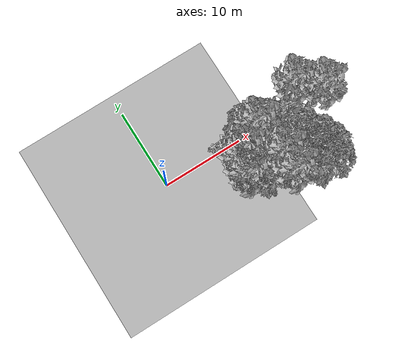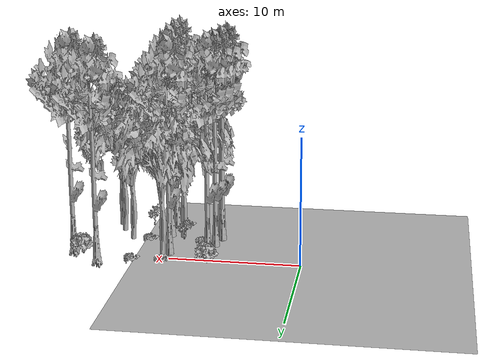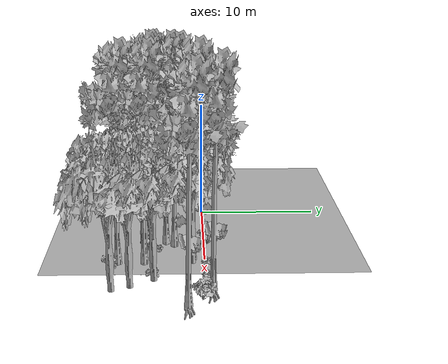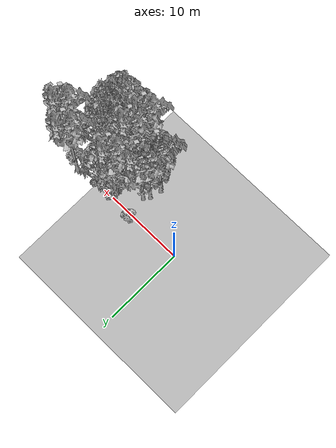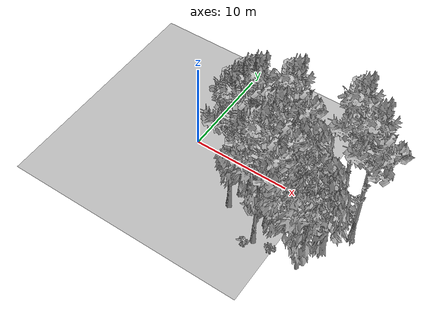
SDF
<sdf version="1.7">
 <world name="default">
  <model name="ground_plane">
   <static>1</static>
   <link name="link">
    <collision name="collision">
     <pose>-50 0 0 0 -0 0</pose>
     <geometry><plane><normal>0 0 1</normal><size>80 80</size></plane></geometry>
     <surface><contact><ode><min_depth>0.01</min_depth><max_vel>0</max_vel></ode></contact></surface>
    </collision>
    <visual name="grass">
     <cast_shadows>0</cast_shadows>
     <geometry>
      <mesh>
       <scale>0.46714285714285714 0.46714285714285714 0.1</scale>
       <uri>file://grass_plane/meshes/grass_plane.dae</uri>
      </mesh>
     </geometry>
    </visual>
   </link>
  </model>
  <model name="Tree 5">
   <static>1</static>
   <pose>10.584103174141113 -0.9741327042595316 0 1.57079 -0 0</pose>
   <link name="link">
    <collision name="collision">
     <geometry><mesh><scale>3.5 5 3.5</scale><uri>model://tree_2/meshes/tree_2.obj</uri></mesh></geometry>
    </collision>
    <visual name="visual">
     <geometry><mesh><scale>3.5 5 3.5</scale><uri>model://tree_2/meshes/tree_2.obj</uri></mesh></geometry>
    </visual>
   </link>
  </model>
  <model name="Tree 15">
   <static>1</static>
   <pose>15.198794155945386 -6.880111373983276 0 1.57079 -0 0</pose>
   <link name="link">
    <collision name="collision">
     <geometry><mesh><scale>3.5 5 3.5</scale><uri>model://tree_2/meshes/tree_2.obj</uri></mesh></geometry>
    </collision>
    <visual name="visual">
     <geometry><mesh><scale>3.5 5 3.5</scale><uri>model://tree_2/meshes/tree_2.obj</uri></mesh></geometry>
    </visual>
   </link>
  </model>
  <model name="Tree 28">
   <static>1</static>
   <pose>10.727780412002062 -4.682710390710994 0 1.57079 -0 0</pose>
   <link name="link">
    <collision name="collision">
     <geometry><mesh><scale>3.5 5 3.5</scale><uri>model://tree_9/meshes/tree_9.obj</uri></mesh></geometry>
    </collision>
    <visual name="visual">
     <geometry><mesh><scale>3.5 5 3.5</scale><uri>model://tree_9/meshes/tree_9.obj</uri></mesh></geometry>
    </visual>
   </link>
  </model>
  <model name="Tree 98">
   <static>1</static>
   <pose>14.646507598905316 -5.560366681929338 0 1.57079 -0 0</pose>
   <link name="link">
    <collision name="collision">
     <geometry><mesh><scale>3.5 5 3.5</scale><uri>model://tree_2/meshes/tree_2.obj</uri></mesh></geometry>
    </collision>
    <visual name="visual">
     <geometry><mesh><scale>3.5 5 3.5</scale><uri>model://tree_2/meshes/tree_2.obj</uri></mesh></geometry>
    </visual>
   </link>
  </model>
  <model name="Tree 156">
   <static>1</static>
   <pose>6.618509151775292 -4.447042795283842 0 1.57079 -0 0</pose>
   <link name="link">
    <collision name="collision">
     <geometry><mesh><scale>3.5 5 3.5</scale><uri>model://tree_9/meshes/tree_9.obj</uri></mesh></geometry>
    </collision>
    <visual name="visual">
     <geometry><mesh><scale>3.5 5 3.5</scale><uri>model://tree_9/meshes/tree_9.obj</uri></mesh></geometry>
    </visual>
   </link>
  </model>
  <model name="Tree 258">
   <static>1</static>
   <pose>9.701514062294663 -4.705033729268763 0 1.57079 -0 0</pose>
   <link name="link">
    <collision name="collision">
     <geometry><mesh><scale>3.5 5 3.5</scale><uri>model://tree_2/meshes/tree_2.obj</uri></mesh></geometry>
    </collision>
    <visual name="visual">
     <geometry><mesh><scale>3.5 5 3.5</scale><uri>model://tree_2/meshes/tree_2.obj</uri></mesh></geometry>
    </visual>
   </link>
  </model>
  <model name="Tree 291">
   <static>1</static>
   <pose>6.944225073277231 -3.060140115478447 0 1.57079 -0 0</pose>
   <link name="link">
    <collision name="collision">
     <geometry><mesh><scale>3.5 5 3.5</scale><uri>model://tree_9/meshes/tree_9.obj</uri></mesh></geometry>
    </collision>
    <visual name="visual">
     <geometry><mesh><scale>3.5 5 3.5</scale><uri>model://tree_9/meshes/tree_9.obj</uri></mesh></geometry>
    </visual>
   </link>
  </model>
  <model name="Tree 300">
   <static>1</static>
   <pose>13.557787972343029 -3.859810606906315 0 1.57079 -0 0</pose>
   <link name="link">
    <collision name="collision">
     <geometry><mesh><scale>3.5 5 3.5</scale><uri>model://tree_2/meshes/tree_2.obj</uri></mesh></geometry>
    </collision>
    <visual name="visual">
     <geometry><mesh><scale>3.5 5 3.5</scale><uri>model://tree_2/meshes/tree_2.obj</uri></mesh></geometry>
    </visual>
   </link>
  </model>
  <model name="Tree 384">
   <static>1</static>
   <pose>10.11382564090431 -0.9237766014454323 0 1.57079 -0 0</pose>
   <link name="link">
    <collision name="collision">
     <geometry><mesh><scale>3.5 5 3.5</scale><uri>model://tree_9/meshes/tree_9.obj</uri></mesh></geometry>
    </collision>
    <visual name="visual">
     <geometry><mesh><scale>3.5 5 3.5</scale><uri>model://tree_9/meshes/tree_9.obj</uri></mesh></geometry>
    </visual>
   </link>
  </model>
  <model name="Tree 450">
   <static>1</static>
   <pose>17.766677469409345 -1.2965832863877509 0 1.57079 -0 0</pose>
   <link name="link">
    <collision name="collision">
     <geometry><mesh><scale>3.5 5 3.5</scale><uri>model://tree_9/meshes/tree_9.obj</uri></mesh></geometry>
    </collision>
    <visual name="visual">
     <geometry><mesh><scale>3.5 5 3.5</scale><uri>model://tree_9/meshes/tree_9.obj</uri></mesh></geometry>
    </visual>
   </link>
  </model>
  <model name="Tree 459">
   <static>1</static>
   <pose>6.78270134845107 -4.684050034568557 0 1.57079 -0 0</pose>
   <link name="link">
    <collision name="collision">
     <geometry><mesh><scale>3.5 5 3.5</scale><uri>model://tree_9/meshes/tree_9.obj</uri></mesh></geometry>
    </collision>
    <visual name="visual">
     <geometry><mesh><scale>3.5 5 3.5</scale><uri>model://tree_9/meshes/tree_9.obj</uri></mesh></geometry>
    </visual>
   </link>
  </model>
  <model name="Tree 518">
   <static>1</static>
   <pose>7.44790265927989 -2.379930296089654 0 1.57079 -0 0</pose>
   <link name="link">
    <collision name="collision">
     <geometry><mesh><scale>3.5 5 3.5</scale><uri>model://tree_9/meshes/tree_9.obj</uri></mesh></geometry>
    </collision>
    <visual name="visual">
     <geometry><mesh><scale>3.5 5 3.5</scale><uri>model://tree_9/meshes/tree_9.obj</uri></mesh></geometry>
    </visual>
   </link>
  </model>
  <model name="Tree 544">
   <static>1</static>
   <pose>10.713565106802605 -6.724636682674628 0 1.57079 -0 0</pose>
   <link name="link">
    <collision name="collision">
     <geometry><mesh><scale>3.5 5 3.5</scale><uri>model://tree_9/meshes/tree_9.obj</uri></mesh></geometry>
    </collision>
    <visual name="visual">
     <geometry><mesh><scale>3.5 5 3.5</scale><uri>model://tree_9/meshes/tree_9.obj</uri></mesh></geometry>
    </visual>
   </link>
  </model>
  <model name="Tree 637">
   <static>1</static>
   <pose>15.461776791582587 0.48468824031796487 0 1.57079 -0 0</pose>
   <link name="link">
    <collision name="collision">
     <geometry><mesh><scale>3.5 5 3.5</scale><uri>model://tree_9/meshes/tree_9.obj</uri></mesh></geometry>
    </collision>
    <visual name="visual">
     <geometry><mesh><scale>3.5 5 3.5</scale><uri>model://tree_9/meshes/tree_9.obj</uri></mesh></geometry>
    </visual>
   </link>
  </model>
  <model name="Bush 26">
   <static>1</static>
   <pose>7.031413510460858 0.2943939399313109 0 1.57079 -0 0</pose>
   <link name="link">
    <collision name="collision">
     <geometry><mesh><scale>2 2 2</scale><uri>model://bush_1/meshes/bush_1.obj</uri></mesh></geometry>
     <surface><contact><collide_without_contact>false</collide_without_contact></contact></surface>
    </collision>
    <visual name="visual">
     <geometry><mesh><scale>2 2 2</scale><uri>model://bush_1/meshes/bush_1.obj</uri></mesh></geometry>
    </visual>
   </link>
  </model>
  <model name="Bush 54">
   <static>1</static>
   <pose>10.537210323574435 0.2518597597523353 0 1.57079 -0 0</pose>
   <link name="link">
    <collision name="collision">
     <geometry><mesh><scale>2 2 2</scale><uri>model://bush_2/meshes/bush_2.obj</uri></mesh></geometry>
     <surface><contact><collide_without_contact>false</collide_without_contact></contact></surface>
    </collision>
    <visual name="visual">
     <geometry><mesh><scale>2 2 2</scale><uri>model://bush_2/meshes/bush_2.obj</uri></mesh></geometry>
    </visual>
   </link>
  </model>
  <model name="Bush 67">
   <static>1</static>
   <pose>9.66065034390278 -4.202705209078488 0 1.57079 -0 0</pose>
   <link name="link">
    <collision name="collision">
     <geometry><mesh><scale>2 2 2</scale><uri>model://bush_5/meshes/bush_5.obj</uri></mesh></geometry>
     <surface><contact><collide_without_contact>false</collide_without_contact></contact></surface>
    </collision>
    <visual name="visual">
     <geometry><mesh><scale>2 2 2</scale><uri>model://bush_5/meshes/bush_5.obj</uri></mesh></geometry>
    </visual>
   </link>
  </model>
  <model name="Bush 100">
   <static>1</static>
   <pose>16.69692050418984 -0.2621588358874902 0 1.57079 -0 0</pose>
   <link name="link">
    <collision name="collision">
     <geometry><mesh><scale>2 2 2</scale><uri>model://bush_1/meshes/bush_1.obj</uri></mesh></geometry>
     <surface><contact><collide_without_contact>false</collide_without_contact></contact></surface>
    </collision>
    <visual name="visual">
     <geometry><mesh><scale>2 2 2</scale><uri>model://bush_1/meshes/bush_1.obj</uri></mesh></geometry>
    </visual>
   </link>
  </model>
  <model name="Bush 109">
   <static>1</static>
   <pose>12.858515692997983 0.2587822484792852 0 1.57079 -0 0</pose>
   <link name="link">
    <collision name="collision">
     <geometry><mesh><scale>2 2 2</scale><uri>model://bush_2/meshes/bush_2.obj</uri></mesh></geometry>
     <surface><contact><collide_without_contact>false</collide_without_contact></contact></surface>
    </collision>
    <visual name="visual">
     <geometry><mesh><scale>2 2 2</scale><uri>model://bush_2/meshes/bush_2.obj</uri></mesh></geometry>
    </visual>
   </link>
  </model>
  <model name="Bush 142">
   <static>1</static>
   <pose>8.132965216563747 -3.8051253430911984 0 1.57079 -0 0</pose>
   <link name="link">
    <collision name="collision">
     <geometry><mesh><scale>2 2 2</scale><uri>model://bush_2/meshes/bush_2.obj</uri></mesh></geometry>
     <surface><contact><collide_without_contact>false</collide_without_contact></contact></surface>
    </collision>
    <visual name="visual">
     <geometry><mesh><scale>2 2 2</scale><uri>model://bush_2/meshes/bush_2.obj</uri></mesh></geometry>
    </visual>
   </link>
  </model>
  <model name="Bush 240">
   <static>1</static>
   <pose>12.340228740404392 -4.014557875833475 0 1.57079 -0 0</pose>
   <link name="link">
    <collision name="collision">
     <geometry><mesh><scale>2 2 2</scale><uri>model://bush_2/meshes/bush_2.obj</uri></mesh></geometry>
     <surface><contact><collide_without_contact>false</collide_without_contact></contact></surface>
    </collision>
    <visual name="visual">
     <geometry><mesh><scale>2 2 2</scale><uri>model://bush_2/meshes/bush_2.obj</uri></mesh></geometry>
    </visual>
   </link>
  </model>
  <model name="Bush 354">
   <static>1</static>
   <pose>9.982649391404152 -7.337388449662299 0 1.57079 -0 0</pose>
   <link name="link">
    <collision name="collision">
     <geometry><mesh><scale>2 2 2</scale><uri>model://bush_2/meshes/bush_2.obj</uri></mesh></geometry>
     <surface><contact><collide_without_contact>false</collide_without_contact></contact></surface>
    </collision>
    <visual name="visual">
     <geometry><mesh><scale>2 2 2</scale><uri>model://bush_2/meshes/bush_2.obj</uri></mesh></geometry>
    </visual>
   </link>
  </model>
  <model name="Bush 464">
   <static>1</static>
   <pose>12.672781658175246 -6.974558031224902 0 1.57079 -0 0</pose>
   <link name="link">
    <collision name="collision">
     <geometry><mesh><scale>2 2 2</scale><uri>model://bush_5/meshes/bush_5.obj</uri></mesh></geometry>
     <surface><contact><collide_without_contact>false</collide_without_contact></contact></surface>
    </collision>
    <visual name="visual">
     <geometry><mesh><scale>2 2 2</scale><uri>model://bush_5/meshes/bush_5.obj</uri></mesh></geometry>
    </visual>
   </link>
  </model>
 </world>
</sdf>
